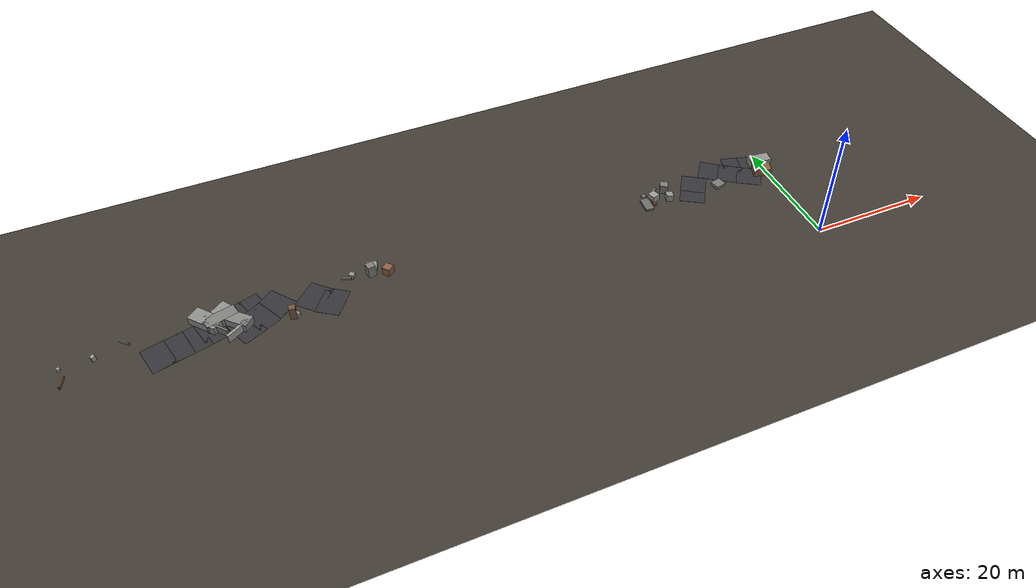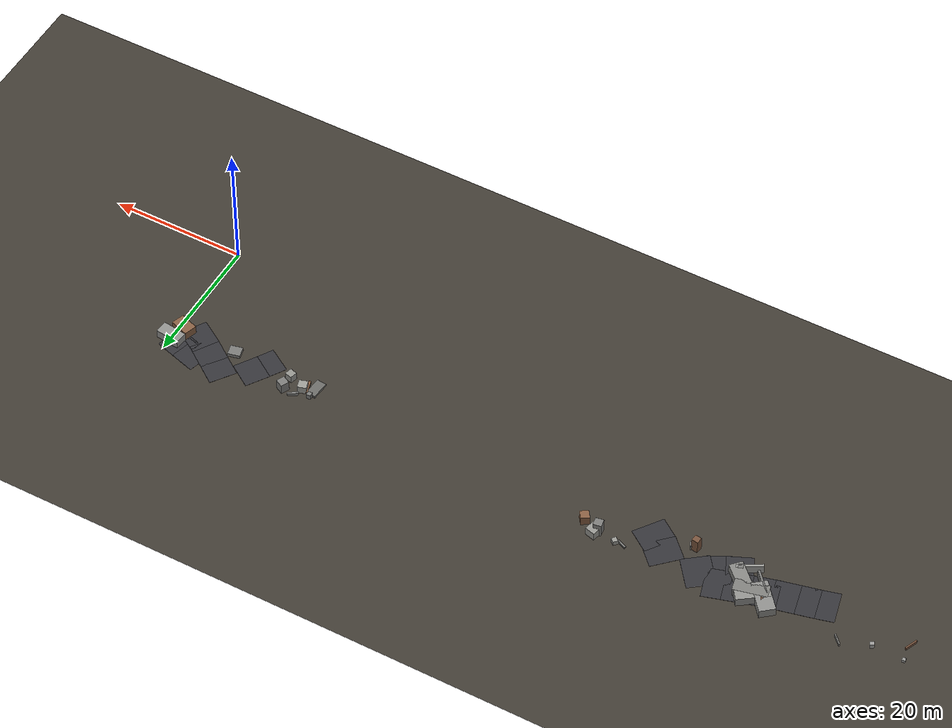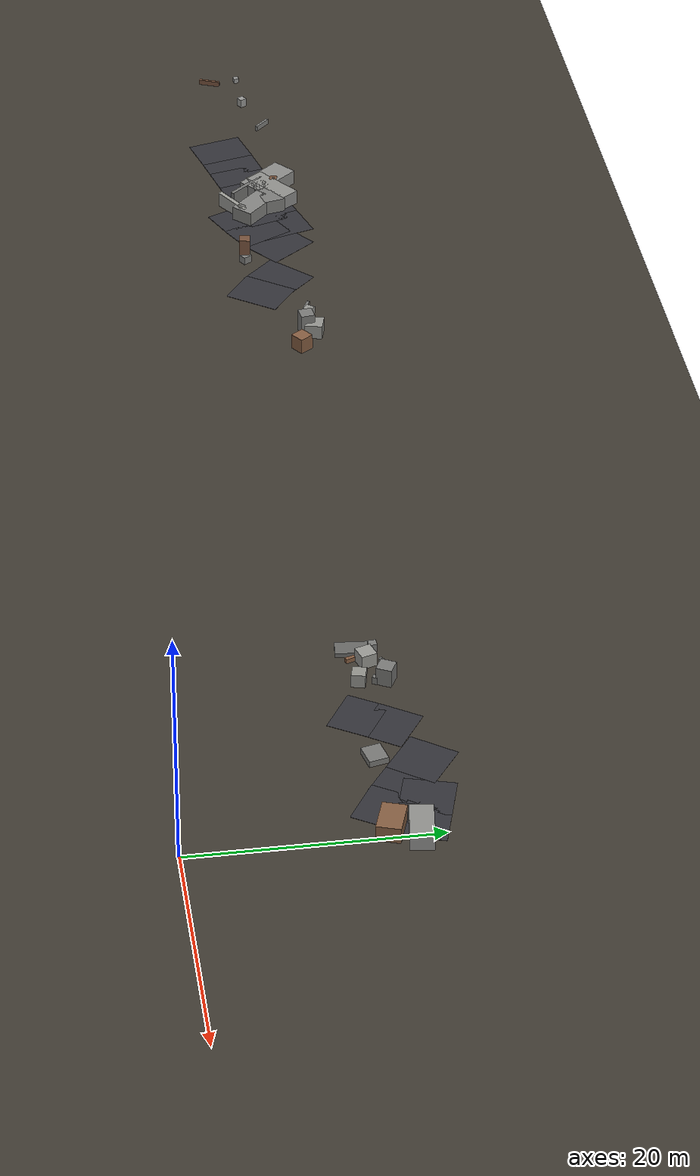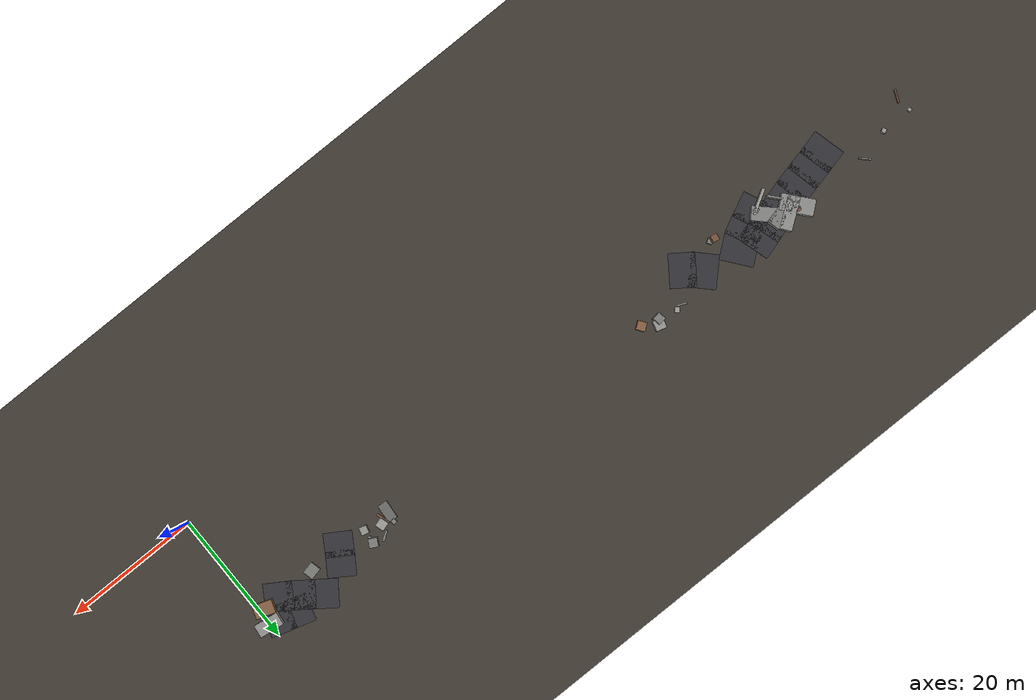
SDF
<sdf version="1.6">
 <world name="navitas_arena">
  <model name="ground_plane">
   <static>true</static>
   <link name="link">
    <collision name="collision">
     <geometry><plane><normal>0 0 1</normal><size>400 400</size></plane></geometry>
     <surface><friction><ode><mu>0.620</mu><mu2>0.620</mu2></ode></friction></surface>
    </collision>
    <visual name="visual">
     <cast_shadows>false</cast_shadows>
     <geometry><plane><normal>0 0 1</normal><size>400 400</size></plane></geometry>
     <material><ambient>0.250 0.230 0.200 1</ambient><diffuse>0.250 0.230 0.200 1</diffuse></material>
    </visual>
   </link>
  </model>
  <model name="road_kolay_1_20">
   <static>true</static>
   <pose>-100.794 15.296 0.040 0 0 0.254</pose>
   <link name="link">
    <collision name="col"><geometry><box><size>3.591 4.920 0.020</size></box></geometry></collision>
    <visual name="vis">
     <geometry><box><size>3.591 4.920 0.020</size></box></geometry>
     <material><ambient>0.20 0.20 0.22 1</ambient><diffuse>0.20 0.20 0.22 1</diffuse></material>
    </visual>
   </link>
  </model>
  <model name="road_kolay_1_21">
   <static>true</static>
   <pose>-98.146 15.952 0.040 0 0 0.233</pose>
   <link name="link">
    <collision name="col"><geometry><box><size>3.665 4.920 0.020</size></box></geometry></collision>
    <visual name="vis">
     <geometry><box><size>3.665 4.920 0.020</size></box></geometry>
     <material><ambient>0.20 0.20 0.22 1</ambient><diffuse>0.20 0.20 0.22 1</diffuse></material>
    </visual>
   </link>
  </model>
  <model name="road_kolay_1_22">
   <static>true</static>
   <pose>-95.513 16.579 0.040 0 0 0.235</pose>
   <link name="link">
    <collision name="col"><geometry><box><size>3.548 4.920 0.020</size></box></geometry></collision>
    <visual name="vis">
     <geometry><box><size>3.548 4.920 0.020</size></box></geometry>
     <material><ambient>0.20 0.20 0.22 1</ambient><diffuse>0.20 0.20 0.22 1</diffuse></material>
    </visual>
   </link>
  </model>
  <model name="road_kolay_1_23">
   <static>true</static>
   <pose>-92.425 17.397 0.040 0 0 0.276</pose>
   <link name="link">
    <collision name="col"><geometry><box><size>4.640 4.920 0.020</size></box></geometry></collision>
    <visual name="vis">
     <geometry><box><size>4.640 4.920 0.020</size></box></geometry>
     <material><ambient>0.20 0.20 0.22 1</ambient><diffuse>0.20 0.20 0.22 1</diffuse></material>
    </visual>
   </link>
  </model>
  <model name="road_kolay_1_24">
   <static>true</static>
   <pose>-89.266 18.320 0.040 0 0 0.295</pose>
   <link name="link">
    <collision name="col"><geometry><box><size>3.744 4.920 0.020</size></box></geometry></collision>
    <visual name="vis">
     <geometry><box><size>3.744 4.920 0.020</size></box></geometry>
     <material><ambient>0.20 0.20 0.22 1</ambient><diffuse>0.20 0.20 0.22 1</diffuse></material>
    </visual>
   </link>
  </model>
  <model name="road_kolay_1_25">
   <static>true</static>
   <pose>-86.598 19.133 0.040 0 0 0.296</pose>
   <link name="link">
    <collision name="col"><geometry><box><size>3.633 4.920 0.020</size></box></geometry></collision>
    <visual name="vis">
     <geometry><box><size>3.633 4.920 0.020</size></box></geometry>
     <material><ambient>0.20 0.20 0.22 1</ambient><diffuse>0.20 0.20 0.22 1</diffuse></material>
    </visual>
   </link>
  </model>
  <model name="road_kolay_2_15">
   <static>true</static>
   <pose>-88.292 15.758 0.040 0 0 0.429</pose>
   <link name="link">
    <collision name="col"><geometry><box><size>3.793 4.920 0.020</size></box></geometry></collision>
    <visual name="vis">
     <geometry><box><size>3.793 4.920 0.020</size></box></geometry>
     <material><ambient>0.20 0.20 0.22 1</ambient><diffuse>0.20 0.20 0.22 1</diffuse></material>
    </visual>
   </link>
  </model>
  <model name="road_kolay_2_16">
   <static>true</static>
   <pose>-85.871 16.930 0.040 0 0 0.476</pose>
   <link name="link">
    <collision name="col"><geometry><box><size>3.387 4.920 0.020</size></box></geometry></collision>
    <visual name="vis">
     <geometry><box><size>3.387 4.920 0.020</size></box></geometry>
     <material><ambient>0.20 0.20 0.22 1</ambient><diffuse>0.20 0.20 0.22 1</diffuse></material>
    </visual>
   </link>
  </model>
  <model name="road_kolay_2_17">
   <static>true</static>
   <pose>-83.465 18.516 0.040 0 0 0.663</pose>
   <link name="link">
    <collision name="col"><geometry><box><size>4.202 4.920 0.020</size></box></geometry></collision>
    <visual name="vis">
     <geometry><box><size>4.202 4.920 0.020</size></box></geometry>
     <material><ambient>0.20 0.20 0.22 1</ambient><diffuse>0.20 0.20 0.22 1</diffuse></material>
    </visual>
   </link>
  </model>
  <model name="road_kolay_3_16">
   <static>true</static>
   <pose>-75.430 15.866 0.040 0 0 2.524</pose>
   <link name="link">
    <collision name="col"><geometry><box><size>3.796 4.920 0.020</size></box></geometry></collision>
    <visual name="vis">
     <geometry><box><size>3.796 4.920 0.020</size></box></geometry>
     <material><ambient>0.20 0.20 0.22 1</ambient><diffuse>0.20 0.20 0.22 1</diffuse></material>
    </visual>
   </link>
  </model>
  <model name="road_kolay_3_17">
   <static>true</static>
   <pose>-77.695 17.787 0.040 0 0 2.356</pose>
   <link name="link">
    <collision name="col"><geometry><box><size>3.964 4.920 0.020</size></box></geometry></collision>
    <visual name="vis">
     <geometry><box><size>3.964 4.920 0.020</size></box></geometry>
     <material><ambient>0.20 0.20 0.22 1</ambient><diffuse>0.20 0.20 0.22 1</diffuse></material>
    </visual>
   </link>
  </model>
  <model name="blk_kolay_1_1_0">
   <static>true</static>
   <pose>-91.827 19.011 0.675 0 0 0.634</pose>
   <link name="link">
    <collision name="col"><geometry><box><size>4.877 1.764 1.350</size></box></geometry></collision>
    <visual name="vis">
     <geometry><box><size>4.877 1.764 1.350</size></box></geometry>
     <material><ambient>0.56 0.56 0.55 1</ambient><diffuse>0.56 0.56 0.55 1</diffuse></material>
    </visual>
   </link>
  </model>
  <model name="blk_kolay_1_1_1">
   <static>true</static>
   <pose>-93.037 19.312 0.675 0 0 2.768</pose>
   <link name="link">
    <collision name="col"><geometry><box><size>0.679 0.679 1.350</size></box></geometry></collision>
    <visual name="vis">
     <geometry><box><size>0.679 0.679 1.350</size></box></geometry>
     <material><ambient>0.47 0.33 0.24 1</ambient><diffuse>0.47 0.33 0.24 1</diffuse></material>
    </visual>
   </link>
  </model>
  <model name="blk_kolay_1_1_3">
   <static>true</static>
   <pose>-93.318 18.789 0.675 0 0 2.272</pose>
   <link name="link">
    <collision name="col"><geometry><box><size>4.863 2.366 1.350</size></box></geometry></collision>
    <visual name="vis">
     <geometry><box><size>4.863 2.366 1.350</size></box></geometry>
     <material><ambient>0.55 0.55 0.54 1</ambient><diffuse>0.55 0.55 0.54 1</diffuse></material>
    </visual>
   </link>
  </model>
  <model name="blk_kolay_1_1_5">
   <static>true</static>
   <pose>-91.296 18.324 0.675 0 0 0.238</pose>
   <link name="link">
    <collision name="col"><geometry><box><size>4.896 1.949 1.350</size></box></geometry></collision>
    <visual name="vis">
     <geometry><box><size>4.896 1.949 1.350</size></box></geometry>
     <material><ambient>0.49 0.49 0.48 1</ambient><diffuse>0.49 0.49 0.48 1</diffuse></material>
    </visual>
   </link>
  </model>
  <model name="blk_kolay_2_1_3">
   <static>true</static>
   <pose>-89.461 15.099 0.675 0 0 0.539</pose>
   <link name="link">
    <collision name="col"><geometry><box><size>3.838 0.399 1.350</size></box></geometry></collision>
    <visual name="vis">
     <geometry><box><size>3.838 0.399 1.350</size></box></geometry>
     <material><ambient>0.62 0.62 0.60 1</ambient><diffuse>0.62 0.62 0.60 1</diffuse></material>
    </visual>
   </link>
  </model>
  <model name="blk_kolay_2_1_4">
   <static>true</static>
   <pose>-92.139 16.681 0.675 0 0 2.296</pose>
   <link name="link">
    <collision name="col"><geometry><box><size>3.939 0.336 1.350</size></box></geometry></collision>
    <visual name="vis">
     <geometry><box><size>3.939 0.336 1.350</size></box></geometry>
     <material><ambient>0.46 0.46 0.45 1</ambient><diffuse>0.46 0.46 0.45 1</diffuse></material>
    </visual>
   </link>
  </model>
  <model name="blk_kolay_2_1_5">
   <static>true</static>
   <pose>-88.406 15.768 0.675 0 0 0.368</pose>
   <link name="link">
    <collision name="col"><geometry><box><size>0.715 0.715 1.350</size></box></geometry></collision>
    <visual name="vis">
     <geometry><box><size>0.715 0.715 1.350</size></box></geometry>
     <material><ambient>0.47 0.47 0.46 1</ambient><diffuse>0.47 0.47 0.46 1</diffuse></material>
    </visual>
   </link>
  </model>
  <model name="blk_kolay_2_1_6">
   <static>true</static>
   <pose>-88.954 16.941 0.675 0 0 2.374</pose>
   <link name="link">
    <collision name="col"><geometry><box><size>3.716 2.033 1.350</size></box></geometry></collision>
    <visual name="vis">
     <geometry><box><size>3.716 2.033 1.350</size></box></geometry>
     <material><ambient>0.52 0.52 0.51 1</ambient><diffuse>0.52 0.52 0.51 1</diffuse></material>
    </visual>
   </link>
  </model>
  <model name="deb_kolay_4">
   <static>true</static>
   <pose>-80.914 15.140 0.353 0 0 0.563</pose>
   <link name="link">
    <collision name="col"><geometry><box><size>0.781 0.781 0.705</size></box></geometry></collision>
    <visual name="vis">
     <geometry><box><size>0.781 0.781 0.705</size></box></geometry>
     <material><ambient>0.50 0.50 0.49 1</ambient><diffuse>0.50 0.50 0.49 1</diffuse></material>
    </visual>
   </link>
  </model>
  <model name="deb_kolay_30">
   <static>true</static>
   <pose>-113.911 18.383 0.217 0 0 0.148</pose>
   <link name="link">
    <collision name="col"><geometry><box><size>0.486 0.486 0.434</size></box></geometry></collision>
    <visual name="vis">
     <geometry><box><size>0.486 0.486 0.434</size></box></geometry>
     <material><ambient>0.59 0.59 0.58 1</ambient><diffuse>0.59 0.59 0.58 1</diffuse></material>
    </visual>
   </link>
  </model>
  <model name="deb_kolay_60">
   <static>true</static>
   <pose>-104.809 19.774 0.255 0 0 2.360</pose>
   <link name="link">
    <collision name="col"><geometry><box><size>1.745 0.192 0.510</size></box></geometry></collision>
    <visual name="vis">
     <geometry><box><size>1.745 0.192 0.510</size></box></geometry>
     <material><ambient>0.52 0.52 0.51 1</ambient><diffuse>0.52 0.52 0.51 1</diffuse></material>
    </visual>
   </link>
  </model>
  <model name="deb_kolay_65">
   <static>true</static>
   <pose>-71.368 19.624 0.355 0 0 0.894</pose>
   <link name="link">
    <collision name="col"><geometry><box><size>0.760 0.760 0.711</size></box></geometry></collision>
    <visual name="vis">
     <geometry><box><size>0.760 0.760 0.711</size></box></geometry>
     <material><ambient>0.59 0.59 0.57 1</ambient><diffuse>0.59 0.59 0.57 1</diffuse></material>
    </visual>
   </link>
  </model>
  <model name="deb_kolay_76">
   <static>true</static>
   <pose>-68.152 19.666 0.635 0 0 1.314</pose>
   <link name="link">
    <collision name="col"><geometry><box><size>1.533 1.533 1.271</size></box></geometry></collision>
    <visual name="vis">
     <geometry><box><size>1.533 1.533 1.271</size></box></geometry>
     <material><ambient>0.58 0.58 0.56 1</ambient><diffuse>0.58 0.58 0.56 1</diffuse></material>
    </visual>
   </link>
  </model>
  <model name="deb_kolay_82">
   <static>true</static>
   <pose>-109.201 18.370 0.403 0 0 0.491</pose>
   <link name="link">
    <collision name="col"><geometry><box><size>0.603 0.603 0.807</size></box></geometry></collision>
    <visual name="vis">
     <geometry><box><size>0.603 0.603 0.807</size></box></geometry>
     <material><ambient>0.60 0.60 0.59 1</ambient><diffuse>0.60 0.60 0.59 1</diffuse></material>
    </visual>
   </link>
  </model>
  <model name="deb_kolay_87">
   <static>true</static>
   <pose>-113.680 15.757 0.239 0 0 1.182</pose>
   <link name="link">
    <collision name="col"><geometry><box><size>1.967 0.220 0.478</size></box></geometry></collision>
    <visual name="vis">
     <geometry><box><size>1.967 0.220 0.478</size></box></geometry>
     <material><ambient>0.46 0.32 0.23 1</ambient><diffuse>0.46 0.32 0.23 1</diffuse></material>
    </visual>
   </link>
  </model>
  <model name="deb_kolay_116">
   <static>true</static>
   <pose>-81.442 15.164 1.079 0 0 1.412</pose>
   <link name="link">
    <collision name="col"><geometry><box><size>0.971 0.971 2.159</size></box></geometry></collision>
    <visual name="vis">
     <geometry><box><size>0.971 0.971 2.159</size></box></geometry>
     <material><ambient>0.46 0.32 0.23 1</ambient><diffuse>0.46 0.32 0.23 1</diffuse></material>
    </visual>
   </link>
  </model>
  <model name="deb_kolay_121">
   <static>true</static>
   <pose>-66.045 18.263 0.695 0 0 0.616</pose>
   <link name="link">
    <collision name="col"><geometry><box><size>1.290 1.290 1.391</size></box></geometry></collision>
    <visual name="vis">
     <geometry><box><size>1.290 1.290 1.391</size></box></geometry>
     <material><ambient>0.53 0.37 0.26 1</ambient><diffuse>0.53 0.37 0.26 1</diffuse></material>
    </visual>
   </link>
  </model>
  <model name="deb_kolay_142">
   <static>true</static>
   <pose>-68.539 18.997 1.021 0 0 0.143</pose>
   <link name="link">
    <collision name="col"><geometry><box><size>1.220 1.220 2.042</size></box></geometry></collision>
    <visual name="vis">
     <geometry><box><size>1.220 1.220 2.042</size></box></geometry>
     <material><ambient>0.48 0.48 0.47 1</ambient><diffuse>0.48 0.48 0.47 1</diffuse></material>
    </visual>
   </link>
  </model>
  <model name="deb_kolay_145">
   <static>true</static>
   <pose>-72.365 19.479 0.149 0 0 2.730</pose>
   <link name="link">
    <collision name="col"><geometry><box><size>1.552 0.237 0.299</size></box></geometry></collision>
    <visual name="vis">
     <geometry><box><size>1.552 0.237 0.299</size></box></geometry>
     <material><ambient>0.49 0.49 0.48 1</ambient><diffuse>0.49 0.49 0.48 1</diffuse></material>
    </visual>
   </link>
  </model>
  <model name="road_orta_1_19">
   <static>true</static>
   <pose>-14.446 15.414 0.040 0 0 1.018</pose>
   <link name="link">
    <collision name="col"><geometry><box><size>3.460 4.100 0.020</size></box></geometry></collision>
    <visual name="vis">
     <geometry><box><size>3.460 4.100 0.020</size></box></geometry>
     <material><ambient>0.20 0.20 0.22 1</ambient><diffuse>0.20 0.20 0.22 1</diffuse></material>
    </visual>
   </link>
  </model>
  <model name="road_orta_1_20">
   <static>true</static>
   <pose>-12.995 17.687 0.040 0 0 0.988</pose>
   <link name="link">
    <collision name="col"><geometry><box><size>3.734 4.100 0.020</size></box></geometry></collision>
    <visual name="vis">
     <geometry><box><size>3.734 4.100 0.020</size></box></geometry>
     <material><ambient>0.20 0.20 0.22 1</ambient><diffuse>0.20 0.20 0.22 1</diffuse></material>
    </visual>
   </link>
  </model>
  <model name="road_orta_2_15">
   <static>true</static>
   <pose>-3.347 15.866 0.040 0 0 2.585</pose>
   <link name="link">
    <collision name="col"><geometry><box><size>4.072 4.100 0.020</size></box></geometry></collision>
    <visual name="vis">
     <geometry><box><size>4.072 4.100 0.020</size></box></geometry>
     <material><ambient>0.20 0.20 0.22 1</ambient><diffuse>0.20 0.20 0.22 1</diffuse></material>
    </visual>
   </link>
  </model>
  <model name="road_orta_2_16">
   <static>true</static>
   <pose>-5.970 17.616 0.040 0 0 2.521</pose>
   <link name="link">
    <collision name="col"><geometry><box><size>4.037 4.100 0.020</size></box></geometry></collision>
    <visual name="vis">
     <geometry><box><size>4.037 4.100 0.020</size></box></geometry>
     <material><ambient>0.20 0.20 0.22 1</ambient><diffuse>0.20 0.20 0.22 1</diffuse></material>
    </visual>
   </link>
  </model>
  <model name="road_orta_2_17">
   <static>true</static>
   <pose>-8.548 19.461 0.040 0 0 2.520</pose>
   <link name="link">
    <collision name="col"><geometry><box><size>4.105 4.100 0.020</size></box></geometry></collision>
    <visual name="vis">
     <geometry><box><size>4.105 4.100 0.020</size></box></geometry>
     <material><ambient>0.20 0.20 0.22 1</ambient><diffuse>0.20 0.20 0.22 1</diffuse></material>
    </visual>
   </link>
  </model>
  <model name="road_orta_3_21">
   <static>true</static>
   <pose>-1.450 18.320 0.040 0 0 2.855</pose>
   <link name="link">
    <collision name="col"><geometry><box><size>3.830 4.100 0.020</size></box></geometry></collision>
    <visual name="vis">
     <geometry><box><size>3.830 4.100 0.020</size></box></geometry>
     <material><ambient>0.20 0.20 0.22 1</ambient><diffuse>0.20 0.20 0.22 1</diffuse></material>
    </visual>
   </link>
  </model>
  <model name="road_orta_3_22">
   <static>true</static>
   <pose>-4.229 19.133 0.040 0 0 2.859</pose>
   <link name="link">
    <collision name="col"><geometry><box><size>3.761 4.100 0.020</size></box></geometry></collision>
    <visual name="vis">
     <geometry><box><size>3.761 4.100 0.020</size></box></geometry>
     <material><ambient>0.20 0.20 0.22 1</ambient><diffuse>0.20 0.20 0.22 1</diffuse></material>
    </visual>
   </link>
  </model>
  <model name="blk_orta_3_2_2">
   <static>true</static>
   <pose>-0.073 18.002 0.675 0 0 3.013</pose>
   <link name="link">
    <collision name="col"><geometry><box><size>3.615 1.874 1.350</size></box></geometry></collision>
    <visual name="vis">
     <geometry><box><size>3.615 1.874 1.350</size></box></geometry>
     <material><ambient>0.56 0.56 0.55 1</ambient><diffuse>0.56 0.56 0.55 1</diffuse></material>
    </visual>
   </link>
  </model>
  <model name="blk_orta_3_2_3">
   <static>true</static>
   <pose>-0.908 15.885 0.675 0 0 2.819</pose>
   <link name="link">
    <collision name="col"><geometry><box><size>2.853 1.931 1.350</size></box></geometry></collision>
    <visual name="vis">
     <geometry><box><size>2.853 1.931 1.350</size></box></geometry>
     <material><ambient>0.52 0.37 0.26 1</ambient><diffuse>0.52 0.37 0.26 1</diffuse></material>
    </visual>
   </link>
  </model>
  <model name="deb_orta_99">
   <static>true</static>
   <pose>-20.216 18.539 0.236 0 0 0.596</pose>
   <link name="link">
    <collision name="col"><geometry><box><size>1.562 0.292 0.473</size></box></geometry></collision>
    <visual name="vis">
     <geometry><box><size>1.562 0.292 0.473</size></box></geometry>
     <material><ambient>0.50 0.50 0.49 1</ambient><diffuse>0.50 0.50 0.49 1</diffuse></material>
    </visual>
   </link>
  </model>
  <model name="deb_orta_116">
   <static>true</static>
   <pose>-20.945 17.021 0.597 0 0 0.309</pose>
   <link name="link">
    <collision name="col"><geometry><box><size>1.320 1.320 1.193</size></box></geometry></collision>
    <visual name="vis">
     <geometry><box><size>1.320 1.320 1.193</size></box></geometry>
     <material><ambient>0.60 0.60 0.58 1</ambient><diffuse>0.60 0.60 0.58 1</diffuse></material>
    </visual>
   </link>
  </model>
  <model name="deb_orta_120">
   <static>true</static>
   <pose>-18.374 17.369 0.318 0 0 1.067</pose>
   <link name="link">
    <collision name="col"><geometry><box><size>0.410 0.410 0.635</size></box></geometry></collision>
    <visual name="vis">
     <geometry><box><size>0.410 0.410 0.635</size></box></geometry>
     <material><ambient>0.47 0.47 0.46 1</ambient><diffuse>0.47 0.47 0.46 1</diffuse></material>
    </visual>
   </link>
  </model>
  <model name="deb_orta_133">
   <static>true</static>
   <pose>-21.501 16.465 0.198 0 0 1.877</pose>
   <link name="link">
    <collision name="col"><geometry><box><size>2.100 0.294 0.396</size></box></geometry></collision>
    <visual name="vis">
     <geometry><box><size>2.100 0.294 0.396</size></box></geometry>
     <material><ambient>0.53 0.37 0.26 1</ambient><diffuse>0.53 0.37 0.26 1</diffuse></material>
    </visual>
   </link>
  </model>
  <model name="deb_orta_146">
   <static>true</static>
   <pose>-18.449 18.230 0.791 0 0 1.085</pose>
   <link name="link">
    <collision name="col"><geometry><box><size>1.279 1.279 1.582</size></box></geometry></collision>
    <visual name="vis">
     <geometry><box><size>1.279 1.279 1.582</size></box></geometry>
     <material><ambient>0.48 0.48 0.47 1</ambient><diffuse>0.48 0.48 0.47 1</diffuse></material>
    </visual>
   </link>
  </model>
  <model name="deb_orta_147">
   <static>true</static>
   <pose>-22.442 17.760 0.390 0 0 1.650</pose>
   <link name="link">
    <collision name="col"><geometry><box><size>0.650 0.650 0.780</size></box></geometry></collision>
    <visual name="vis">
     <geometry><box><size>0.650 0.650 0.780</size></box></geometry>
     <material><ambient>0.48 0.48 0.47 1</ambient><diffuse>0.48 0.48 0.47 1</diffuse></material>
    </visual>
   </link>
  </model>
  <model name="deb_orta_166">
   <static>true</static>
   <pose>-22.576 16.167 0.187 0 0 1.490</pose>
   <link name="link">
    <collision name="col"><geometry><box><size>2.730 1.458 0.373</size></box></geometry></collision>
    <visual name="vis">
     <geometry><box><size>2.730 1.458 0.373</size></box></geometry>
     <material><ambient>0.41 0.41 0.40 1</ambient><diffuse>0.41 0.41 0.40 1</diffuse></material>
    </visual>
   </link>
  </model>
  <model name="deb_orta_197">
   <static>true</static>
   <pose>-18.495 16.106 0.587 0 0 1.312</pose>
   <link name="link">
    <collision name="col"><geometry><box><size>1.119 1.119 1.175</size></box></geometry></collision>
    <visual name="vis">
     <geometry><box><size>1.119 1.119 1.175</size></box></geometry>
     <material><ambient>0.57 0.57 0.55 1</ambient><diffuse>0.57 0.57 0.55 1</diffuse></material>
    </visual>
   </link>
  </model>
  <model name="deb_orta_221">
   <static>true</static>
   <pose>-9.291 15.917 0.269 0 0 0.231</pose>
   <link name="link">
    <collision name="col"><geometry><box><size>1.834 1.589 0.537</size></box></geometry></collision>
    <visual name="vis">
     <geometry><box><size>1.834 1.589 0.537</size></box></geometry>
     <material><ambient>0.47 0.47 0.46 1</ambient><diffuse>0.47 0.47 0.46 1</diffuse></material>
    </visual>
   </link>
  </model>
 </world>
</sdf>
